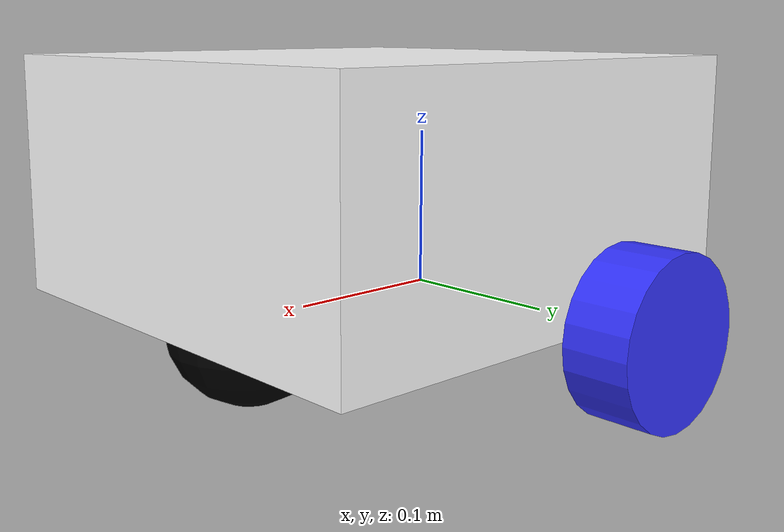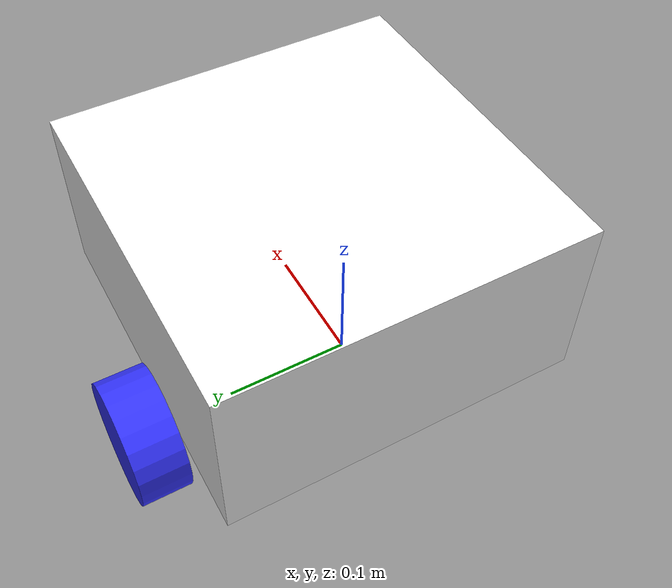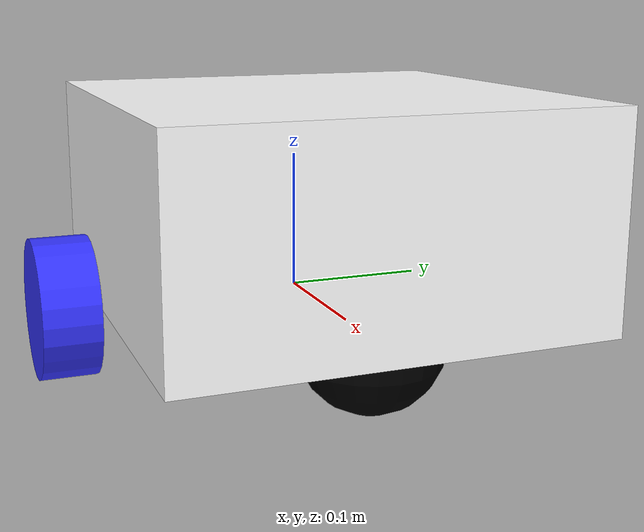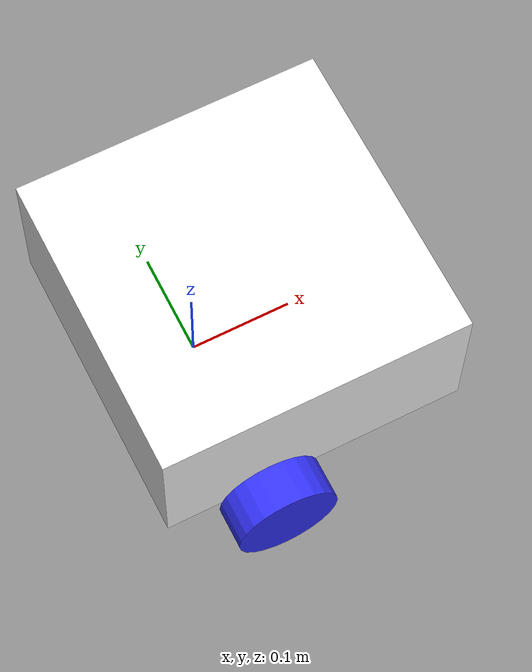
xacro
<?xml version="1.0"?>
<robot xmlns:xacro="http://www.ros.org/wiki/xacro" >

    <xacro:include filename="inertial_macros.xacro"/>

    <material name="white">
        <color rgba="1 1 1 1" />
    </material>

    <material name="orange">
        <color rgba="1 0.3 0.1 1"/>
    </material>

    <material name="blue">
        <color rgba="0.2 0.2 1 1"/>
    </material>

    <material name="black">
        <color rgba="0 0 0 1"/>
    </material>

    <!-- BASE LINK -->

    <link name="base_link">

    </link>

    <!-- CHASSIS LINK -->

    <joint name="chassis_joint" type="fixed">
        <parent link="base_link"/>
        <child link="chassis"/>
        <origin xyz="-0.1 0 0"/>
    </joint>

    <link name="chassis">
        <visual>
            <origin xyz="0.15 0 0.075"/>
            <geometry>
                <box size="0.3 0.3 0.15"/>
            </geometry>
            <material name="white"/>
        </visual>
        <collision>
            <origin xyz="0.15 0 0.075"/>
            <geometry>
                <box size="0.3 0.3 0.15"/>
            </geometry>
        </collision>
        <xacro:inertial_box mass="0.5" x="0.3" y="0.3" z="0.15">
            <origin xyz="0.15 0 0.075" rpy="0 0 0"/>
        </xacro:inertial_box>
    </link>

    <gazebo reference="chassis">
        <material>Gazebo/White</material>
    </gazebo>

    <!-- LEFT WHEEL LINK -->

    <joint name="left_wheel_joint" type="continuous">
        <parent link="base_link"/>
        <child link="left_wheel"/>
        <origin xyz="0 0.175 0" rpy="-${pi/2} 0 0" />
        <axis xyz="0 0 1"/>
    </joint>

    <link name="left_wheel">
        <visual>
            <geometry>
                <cylinder radius="0.05" length="0.04"/>
            </geometry>
            <material name="blue"/>
        </visual>
        <collision>
            <geometry>
                <cylinder radius="0.05" length="0.04"/>
            </geometry>
        </collision>
        <xacro:inertial_cylinder mass="0.1" length="0.04" radius="0.05">
            <origin xyz="0 0 0" rpy="0 0 0"/>
        </xacro:inertial_cylinder>
    </link>

    <gazebo reference="left_wheel">
        <material>Gazebo/Blue</material>
    </gazebo>

    <!-- RIGHT WHEEL LINK -->

    <joint name="right_wheel_joint" type="continuous">
        <parent link="base_link"/>
        <child link="right_wheel"/>
        <origin xyz="0 -0.175 0" rpy="${pi/2} 0 0" />
        <axis xyz="0 0 -1"/>
    </joint>

    <link name="right_wheel">
        <visual>
            <geometry>
                <cylinder radius="0.05" length="0.04"/>
            </geometry>
            <material name="blue"/>
        </visual>
        <collision>
            <geometry>
                <cylinder radius="0.05" length="0.04"/>
            </geometry>
        </collision>
        <xacro:inertial_cylinder mass="0.1" length="0.04" radius="0.05">
            <origin xyz="0 0 0" rpy="0 0 0"/>
        </xacro:inertial_cylinder>
    </link>

    <gazebo reference="right_wheel">
        <material>Gazebo/Blue</material>
    </gazebo>

    <!-- CASTER WHEEL LINK -->

    <joint name="caster_wheel_joint" type="fixed">
        <parent link="chassis"/>
        <child link="caster_wheel"/>
        <origin xyz="0.24 0 0"/>
    </joint>

    <link name="caster_wheel">
        <visual>
            <geometry>
                <sphere radius="0.05"/>
            </geometry>
            <material name="black"/>
        </visual><?xml version="1.0"?>
        <robot xmlns:xacro="http://www.ros.org/wiki/xacro" >

            <xacro:include filename="inertial_macros.xacro"/>

            <xacro:property name="chassis_length" value="0.335"/>
            <xacro:property name="chassis_width" value="0.265"/>
            <xacro:property name="chassis_height" value="0.138"/>
            <xacro:property name="chassis_mass" value="1.0"/>
            <xacro:property name="wheel_radius" value="0.033"/>
            <xacro:property name="wheel_thickness" value="0.026"/>
            <xacro:property name="wheel_mass" value="0.05"/>
            <xacro:property name="wheel_offset_x" value="0.226"/>
            <xacro:property name="wheel_offset_y" value="0.1485"/>
            <xacro:property name="wheel_offset_z" value="0.01"/>
            <xacro:property name="caster_wheel_radius" value="0.01"/>
            <xacro:property name="caster_wheel_mass" value="0.01"/>
            <xacro:property name="caster_wheel_offset_x" value="0.075"/>
            <xacro:property name="caster_wheel_offset_z" value="${wheel_offset_z - wheel_radius + caster_wheel_radius}"/>

            <material name="white">
                <color rgba="1 1 1 1" />
            </material>

            <material name="orange">
                <color rgba="1 0.3 0.1 1"/>
            </material>

            <material name="blue">
                <color rgba="0.2 0.2 1 1"/>
            </material>

            <material name="black">
                <color rgba="0 0 0 1"/>
            </material>

            <material name="red">
                <color rgba="1 0 0 1"/>
            </material>

            <!-- BASE LINK -->

            <link name="base_link">

            </link>

            <!-- BASE_FOOTPRINT LINK -->

            <joint name="base_footprint_joint" type="fixed">
                <parent link="base_link"/>
                <child link="base_footprint"/>
                <origin xyz="0 0 0" rpy="0 0 0"/>
            </joint>

            <link name="base_footprint">
            </link>

            <!-- CHASSIS LINK -->

            <joint name="chassis_joint" type="fixed">
                <parent link="base_link"/>
                <child link="chassis"/>
                <origin xyz="${-wheel_offset_x} 0 ${-wheel_offset_z}"/>
            </joint>

            <link name="chassis">
                <visual>
                    <origin xyz="${chassis_length/2} 0 ${chassis_height/2}"/>
                    <geometry>
                        <box size="${chassis_length} ${chassis_width} ${chassis_height}"/>
                    </geometry>
                    <material name="orange"/>
                </visual>
                <collision>
                    <origin xyz="${chassis_length/2} 0 ${chassis_height/2}"/>
                    <geometry>
                        <box size="${chassis_length} ${chassis_width} ${chassis_height}"/>
                    </geometry>
                </collision>
                <xacro:inertial_box mass="0.5" x="${chassis_length}" y="${chassis_width}" z="${chassis_height}">
                    <origin xyz="${chassis_length/2} 0 ${chassis_height/2}" rpy="0 0 0"/>
                </xacro:inertial_box>
            </link>

            <gazebo reference="chassis">
                <material>Gazebo/Orange</material>
            </gazebo>

            <!-- LEFT WHEEL LINK -->

            <joint name="left_wheel_joint" type="continuous">
                <parent link="base_link"/>
                <child link="left_wheel"/>
                <origin xyz="0 ${wheel_offset_y} 0" rpy="-${pi/2} 0 0" />
                <axis xyz="0 0 1"/>
            </joint>

            <link name="left_wheel">
                <visual>
                    <geometry>
                        <cylinder radius="${wheel_radius}" length="${wheel_thickness}"/>
                    </geometry>
                    <material name="blue"/>
                </visual>
                <collision>
                    <geometry>
                        <sphere radius="${wheel_radius}"/>
                    </geometry>
                </collision>
                <xacro:inertial_cylinder mass="${wheel_mass}" length="${wheel_thickness}" radius="${wheel_radius}">
                    <origin xyz="0 0 0" rpy="0 0 0"/>
                </xacro:inertial_cylinder>
            </link>

            <gazebo reference="left_wheel">
                <material>Gazebo/Blue</material>
            </gazebo>

            <!-- RIGHT WHEEL LINK -->

            <joint name="right_wheel_joint" type="continuous">
                <parent link="base_link"/>
                <child link="right_wheel"/>
                <origin xyz="0 ${-wheel_offset_y} 0" rpy="${pi/2} 0 0" />
                <axis xyz="0 0 -1"/>
            </joint>

            <link name="right_wheel">
                <visual>
                    <geometry>
                        <cylinder radius="${wheel_radius}" length="${wheel_thickness}"/>
                    </geometry>
                    <material name="blue"/>
                </visual>
                <collision>
                    <geometry>
                        <sphere radius="${wheel_radius}"/>
                    </geometry>
                </collision>
                <xacro:inertial_cylinder mass="${wheel_mass}" length="${wheel_thickness}" radius="${wheel_radius}">
                    <origin xyz="0 0 0" rpy="0 0 0"/>
                </xacro:inertial_cylinder>
            </link>

            <gazebo reference="right_wheel">
                <material>Gazebo/Blue</material>
            </gazebo>

            <!-- CASTER WHEEL LINK -->

            <joint name="caster_wheel_joint" type="fixed">
                <parent link="chassis"/>
                <child link="caster_wheel"/>
                <origin xyz="${caster_wheel_offset_x} 0 ${caster_wheel_offset_z}"/>
            </joint>

            <link name="caster_wheel">
                <visual>
                    <geometry>
                        <sphere radius="${caster_wheel_radius}"/>
                    </geometry>
                    <material name="white"/>
                </visual>
                <collision>
                    <geometry>
                        <sphere radius="${caster_wheel_radius}"/>
                    </geometry>
                </collision>
                <xacro:inertial_sphere mass="${caster_wheel_mass}" radius="${caster_wheel_radius}">
                    <origin xyz="0 0 0" rpy="0 0 0"/>
                </xacro:inertial_sphere>
            </link>

            <gazebo reference="caster_wheel">
                <material>Gazebo/White</material>
                <mu1 value="0.001"/>
                <mu2 value="0.001"/>
            </gazebo>

        </robot>
        <collision>
            <geometry>
                <sphere radius="0.05"/>
            </geometry>
        </collision>
        <xacro:inertial_sphere mass="0.1" radius="0.05">
            <origin xyz="0 0 0" rpy="0 0 0"/>
        </xacro:inertial_sphere>
    </link>

    <gazebo reference="caster_wheel">
        <material>Gazebo/Black</material>
        <mu1 value="0.001"/>
        <mu2 value="0.001"/>
    </gazebo>

</robot>
